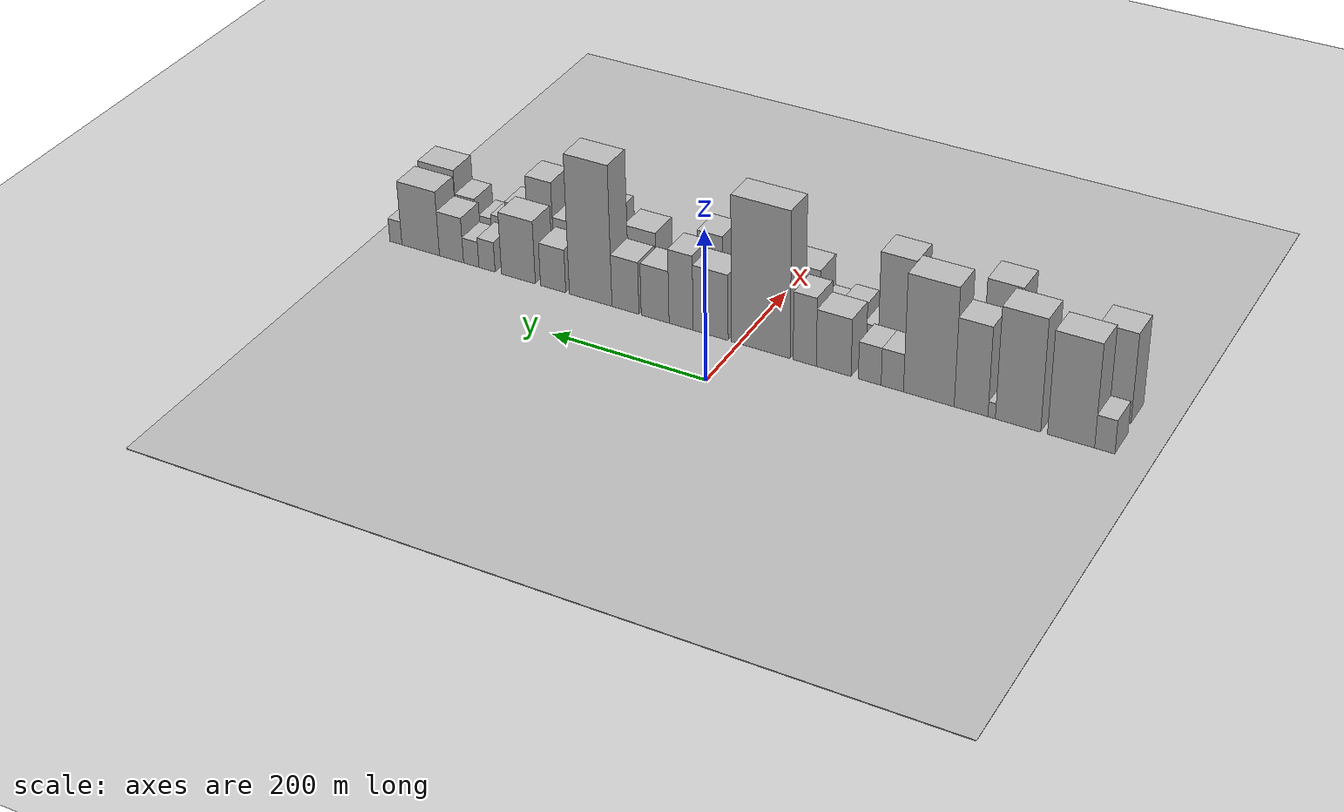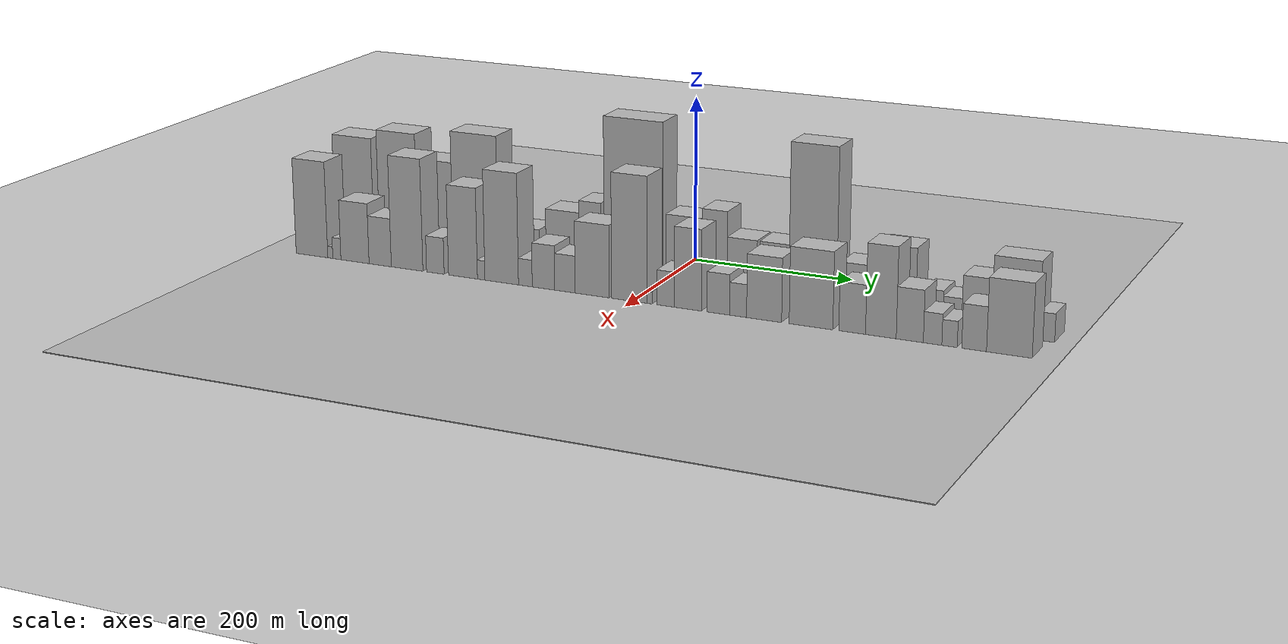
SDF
<sdf version="1.6">
 <world name="default">
  <include><name>ground_plane_1</name><uri>model://HANNAS_ground_plane</uri></include>
  <include>
   <name>ground_plane_2</name>
   <uri>model://HANNAS_ground_plane</uri>
   <pose>100 0 0  0 0 0</pose>
  </include>
  <model name="building_1">
   <static>1</static>
   <pose>100.0000 -445.3477 0 0.000000 0.000000 0.000000</pose>
   <link name="link">
    <pose>0 0 22.50 0 0 0</pose>
    <collision name="collision"><geometry><box><size>40.0000 23.3045 45.0000</size></box></geometry></collision>
    <visual name="visual">
     <cast_shadows>0</cast_shadows>
     <geometry><box><size>40.0000 23.3045 45.0000</size></box></geometry>
     <material>
      <script>
       <uri>model://HANNAS_wall/materials/scripts</uri>
       <uri>model://HANNAS_wall/materials/textures</uri>
       <name>vrc/HANNAS_wall</name>
      </script>
     </material>
    </visual>
   </link>
  </model>
  <model name="building_2">
   <static>1</static>
   <pose>100.0000 -406.2519 0 0.000000 0.000000 0.000000</pose>
   <link name="link">
    <pose>0 0 69.00 0 0 0</pose>
    <collision name="collision"><geometry><box><size>40.0000 54.8871 138.0000</size></box></geometry></collision>
    <visual name="visual">
     <cast_shadows>0</cast_shadows>
     <geometry><box><size>40.0000 54.8871 138.0000</size></box></geometry>
     <material>
      <script>
       <uri>model://HANNAS_wall/materials/scripts</uri>
       <uri>model://HANNAS_wall/materials/textures</uri>
       <name>vrc/HANNAS_wall</name>
      </script>
     </material>
    </visual>
   </link>
  </model>
  <model name="building_3">
   <static>1</static>
   <pose>100.0000 -344.0188 0 0.000000 0.000000 0.000000</pose>
   <link name="link">
    <pose>0 0 75.00 0 0 0</pose>
    <collision name="collision"><geometry><box><size>40.0000 53.5791 150.0000</size></box></geometry></collision>
    <visual name="visual">
     <cast_shadows>0</cast_shadows>
     <geometry><box><size>40.0000 53.5791 150.0000</size></box></geometry>
     <material>
      <script>
       <uri>model://HANNAS_wall/materials/scripts</uri>
       <uri>model://HANNAS_wall/materials/textures</uri>
       <name>vrc/HANNAS_wall</name>
      </script>
     </material>
    </visual>
   </link>
  </model>
  <model name="building_4">
   <static>1</static>
   <pose>100.0000 -312.8354 0 0.000000 0.000000 0.000000</pose>
   <link name="link">
    <pose>0 0 10.50 0 0 0</pose>
    <collision name="collision"><geometry><box><size>40.0000 8.7878 21.0000</size></box></geometry></collision>
    <visual name="visual">
     <cast_shadows>0</cast_shadows>
     <geometry><box><size>40.0000 8.7878 21.0000</size></box></geometry>
     <material>
      <script>
       <uri>model://HANNAS_wall/materials/scripts</uri>
       <uri>model://HANNAS_wall/materials/textures</uri>
       <name>vrc/HANNAS_wall</name>
      </script>
     </material>
    </visual>
   </link>
  </model>
  <model name="building_5">
   <static>1</static>
   <pose>100.0000 -288.1928 0 0.000000 0.000000 0.000000</pose>
   <link name="link">
    <pose>0 0 60.00 0 0 0</pose>
    <collision name="collision"><geometry><box><size>40.0000 40.4973 120.0000</size></box></geometry></collision>
    <visual name="visual">
     <cast_shadows>0</cast_shadows>
     <geometry><box><size>40.0000 40.4973 120.0000</size></box></geometry>
     <material>
      <script>
       <uri>model://HANNAS_wall/materials/scripts</uri>
       <uri>model://HANNAS_wall/materials/textures</uri>
       <name>vrc/HANNAS_wall</name>
      </script>
     </material>
    </visual>
   </link>
  </model>
  <model name="building_6">
   <static>1</static>
   <pose>100.0000 -237.1437 0 0.000000 0.000000 0.000000</pose>
   <link name="link">
    <pose>0 0 79.50 0 0 0</pose>
    <collision name="collision"><geometry><box><size>40.0000 61.6009 159.0000</size></box></geometry></collision>
    <visual name="visual">
     <cast_shadows>0</cast_shadows>
     <geometry><box><size>40.0000 61.6009 159.0000</size></box></geometry>
     <material>
      <script>
       <uri>model://HANNAS_wall/materials/scripts</uri>
       <uri>model://HANNAS_wall/materials/textures</uri>
       <name>vrc/HANNAS_wall</name>
      </script>
     </material>
    </visual>
   </link>
  </model>
  <model name="building_7">
   <static>1</static>
   <pose>100.0000 -192.6250 0 0.000000 0.000000 0.000000</pose>
   <link name="link">
    <pose>0 0 25.50 0 0 0</pose>
    <collision name="collision"><geometry><box><size>40.0000 27.4365 51.0000</size></box></geometry></collision>
    <visual name="visual">
     <cast_shadows>0</cast_shadows>
     <geometry><box><size>40.0000 27.4365 51.0000</size></box></geometry>
     <material>
      <script>
       <uri>model://HANNAS_wall/materials/scripts</uri>
       <uri>model://HANNAS_wall/materials/textures</uri>
       <name>vrc/HANNAS_wall</name>
      </script>
     </material>
    </visual>
   </link>
  </model>
  <model name="building_8">
   <static>1</static>
   <pose>100.0000 -164.7722 0 0.000000 0.000000 0.000000</pose>
   <link name="link">
    <pose>0 0 25.50 0 0 0</pose>
    <collision name="collision"><geometry><box><size>40.0000 28.2692 51.0000</size></box></geometry></collision>
    <visual name="visual">
     <cast_shadows>0</cast_shadows>
     <geometry><box><size>40.0000 28.2692 51.0000</size></box></geometry>
     <material>
      <script>
       <uri>model://HANNAS_wall/materials/scripts</uri>
       <uri>model://HANNAS_wall/materials/textures</uri>
       <name>vrc/HANNAS_wall</name>
      </script>
     </material>
    </visual>
   </link>
  </model>
  <model name="building_9">
   <static>1</static>
   <pose>100.0000 -119.8400 0 0.000000 0.000000 0.000000</pose>
   <link name="link">
    <pose>0 0 39.00 0 0 0</pose>
    <collision name="collision"><geometry><box><size>40.0000 43.5954 78.0000</size></box></geometry></collision>
    <visual name="visual">
     <cast_shadows>0</cast_shadows>
     <geometry><box><size>40.0000 43.5954 78.0000</size></box></geometry>
     <material>
      <script>
       <uri>model://HANNAS_wall/materials/scripts</uri>
       <uri>model://HANNAS_wall/materials/textures</uri>
       <name>vrc/HANNAS_wall</name>
      </script>
     </material>
    </visual>
   </link>
  </model>
  <model name="building_10">
   <static>1</static>
   <pose>100.0000 -83.4941 0 0.000000 0.000000 0.000000</pose>
   <link name="link">
    <pose>0 0 46.50 0 0 0</pose>
    <collision name="collision"><geometry><box><size>40.0000 29.0963 93.0000</size></box></geometry></collision>
    <visual name="visual">
     <cast_shadows>0</cast_shadows>
     <geometry><box><size>40.0000 29.0963 93.0000</size></box></geometry>
     <material>
      <script>
       <uri>model://HANNAS_wall/materials/scripts</uri>
       <uri>model://HANNAS_wall/materials/textures</uri>
       <name>vrc/HANNAS_wall</name>
      </script>
     </material>
    </visual>
   </link>
  </model>
  <model name="building_11">
   <static>1</static>
   <pose>100.0000 -27.3480 0 0.000000 0.000000 0.000000</pose>
   <link name="link">
    <pose>0 0 99.00 0 0 0</pose>
    <collision name="collision"><geometry><box><size>40.0000 75.1959 198.0000</size></box></geometry></collision>
    <visual name="visual">
     <cast_shadows>0</cast_shadows>
     <geometry><box><size>40.0000 75.1959 198.0000</size></box></geometry>
     <material>
      <script>
       <uri>model://HANNAS_wall/materials/scripts</uri>
       <uri>model://HANNAS_wall/materials/textures</uri>
       <name>vrc/HANNAS_wall</name>
      </script>
     </material>
    </visual>
   </link>
  </model>
  <model name="building_12">
   <static>1</static>
   <pose>100.0000 37.0428 0 0.000000 0.000000 0.000000</pose>
   <link name="link">
    <pose>0 0 45.00 0 0 0</pose>
    <collision name="collision"><geometry><box><size>40.0000 45.5857 90.0000</size></box></geometry></collision>
    <visual name="visual">
     <cast_shadows>0</cast_shadows>
     <geometry><box><size>40.0000 45.5857 90.0000</size></box></geometry>
     <material>
      <script>
       <uri>model://HANNAS_wall/materials/scripts</uri>
       <uri>model://HANNAS_wall/materials/textures</uri>
       <name>vrc/HANNAS_wall</name>
      </script>
     </material>
    </visual>
   </link>
  </model>
  <model name="building_13">
   <static>1</static>
   <pose>100.0000 75.6581 0 0.000000 0.000000 0.000000</pose>
   <link name="link">
    <pose>0 0 51.00 0 0 0</pose>
    <collision name="collision"><geometry><box><size>40.0000 31.6449 102.0000</size></box></geometry></collision>
    <visual name="visual">
     <cast_shadows>0</cast_shadows>
     <geometry><box><size>40.0000 31.6449 102.0000</size></box></geometry>
     <material>
      <script>
       <uri>model://HANNAS_wall/materials/scripts</uri>
       <uri>model://HANNAS_wall/materials/textures</uri>
       <name>vrc/HANNAS_wall</name>
      </script>
     </material>
    </visual>
   </link>
  </model>
  <model name="building_14">
   <static>1</static>
   <pose>100.0000 109.9101 0 0.000000 0.000000 0.000000</pose>
   <link name="link">
    <pose>0 0 36.00 0 0 0</pose>
    <collision name="collision"><geometry><box><size>40.0000 36.8592 72.0000</size></box></geometry></collision>
    <visual name="visual">
     <cast_shadows>0</cast_shadows>
     <geometry><box><size>40.0000 36.8592 72.0000</size></box></geometry>
     <material>
      <script>
       <uri>model://HANNAS_wall/materials/scripts</uri>
       <uri>model://HANNAS_wall/materials/textures</uri>
       <name>vrc/HANNAS_wall</name>
      </script>
     </material>
    </visual>
   </link>
  </model>
  <model name="building_15">
   <static>1</static>
   <pose>100.0000 149.3721 0 0.000000 0.000000 0.000000</pose>
   <link name="link">
    <pose>0 0 36.00 0 0 0</pose>
    <collision name="collision"><geometry><box><size>40.0000 36.0648 72.0000</size></box></geometry></collision>
    <visual name="visual">
     <cast_shadows>0</cast_shadows>
     <geometry><box><size>40.0000 36.0648 72.0000</size></box></geometry>
     <material>
      <script>
       <uri>model://HANNAS_wall/materials/scripts</uri>
       <uri>model://HANNAS_wall/materials/textures</uri>
       <name>vrc/HANNAS_wall</name>
      </script>
     </material>
    </visual>
   </link>
  </model>
  <model name="building_16">
   <static>1</static>
   <pose>100.0000 196.2061 0 0.000000 0.000000 0.000000</pose>
   <link name="link">
    <pose>0 0 96.00 0 0 0</pose>
    <collision name="collision"><geometry><box><size>40.0000 57.6031 192.0000</size></box></geometry></collision>
    <visual name="visual">
     <cast_shadows>0</cast_shadows>
     <geometry><box><size>40.0000 57.6031 192.0000</size></box></geometry>
     <material>
      <script>
       <uri>model://HANNAS_wall/materials/scripts</uri>
       <uri>model://HANNAS_wall/materials/textures</uri>
       <name>vrc/HANNAS_wall</name>
      </script>
     </material>
    </visual>
   </link>
  </model>
  <model name="building_17">
   <static>1</static>
   <pose>100.0000 247.3049 0 0.000000 0.000000 0.000000</pose>
   <link name="link">
    <pose>0 0 30.00 0 0 0</pose>
    <collision name="collision"><geometry><box><size>40.0000 34.5946 60.0000</size></box></geometry></collision>
    <visual name="visual">
     <cast_shadows>0</cast_shadows>
     <geometry><box><size>40.0000 34.5946 60.0000</size></box></geometry>
     <material>
      <script>
       <uri>model://HANNAS_wall/materials/scripts</uri>
       <uri>model://HANNAS_wall/materials/textures</uri>
       <name>vrc/HANNAS_wall</name>
      </script>
     </material>
    </visual>
   </link>
  </model>
  <model name="building_18">
   <static>1</static>
   <pose>100.0000 295.0249 0 0.000000 0.000000 0.000000</pose>
   <link name="link">
    <pose>0 0 43.50 0 0 0</pose>
    <collision name="collision"><geometry><box><size>40.0000 46.8454 87.0000</size></box></geometry></collision>
    <visual name="visual">
     <cast_shadows>0</cast_shadows>
     <geometry><box><size>40.0000 46.8454 87.0000</size></box></geometry>
     <material>
      <script>
       <uri>model://HANNAS_wall/materials/scripts</uri>
       <uri>model://HANNAS_wall/materials/textures</uri>
       <name>vrc/HANNAS_wall</name>
      </script>
     </material>
    </visual>
   </link>
  </model>
  <model name="building_19">
   <static>1</static>
   <pose>100.0000 338.7899 0 0.000000 0.000000 0.000000</pose>
   <link name="link">
    <pose>0 0 21.00 0 0 0</pose>
    <collision name="collision"><geometry><box><size>40.0000 22.6846 42.0000</size></box></geometry></collision>
    <visual name="visual">
     <cast_shadows>0</cast_shadows>
     <geometry><box><size>40.0000 22.6846 42.0000</size></box></geometry>
     <material>
      <script>
       <uri>model://HANNAS_wall/materials/scripts</uri>
       <uri>model://HANNAS_wall/materials/textures</uri>
       <name>vrc/HANNAS_wall</name>
      </script>
     </material>
    </visual>
   </link>
  </model>
  <model name="building_20">
   <static>1</static>
   <pose>100.0000 360.9182 0 0.000000 0.000000 0.000000</pose>
   <link name="link">
    <pose>0 0 18.00 0 0 0</pose>
    <collision name="collision"><geometry><box><size>40.0000 21.5720 36.0000</size></box></geometry></collision>
    <visual name="visual">
     <cast_shadows>0</cast_shadows>
     <geometry><box><size>40.0000 21.5720 36.0000</size></box></geometry>
     <material>
      <script>
       <uri>model://HANNAS_wall/materials/scripts</uri>
       <uri>model://HANNAS_wall/materials/textures</uri>
       <name>vrc/HANNAS_wall</name>
      </script>
     </material>
    </visual>
   </link>
  </model>
  <model name="building_21">
   <static>1</static>
   <pose>100.0000 388.7492 0 0.000000 0.000000 0.000000</pose>
   <link name="link">
    <pose>0 0 31.50 0 0 0</pose>
    <collision name="collision"><geometry><box><size>40.0000 34.0901 63.0000</size></box></geometry></collision>
    <visual name="visual">
     <cast_shadows>0</cast_shadows>
     <geometry><box><size>40.0000 34.0901 63.0000</size></box></geometry>
     <material>
      <script>
       <uri>model://HANNAS_wall/materials/scripts</uri>
       <uri>model://HANNAS_wall/materials/textures</uri>
       <name>vrc/HANNAS_wall</name>
      </script>
     </material>
    </visual>
   </link>
  </model>
  <model name="building_22">
   <static>1</static>
   <pose>100.0000 432.6390 0 0.000000 0.000000 0.000000</pose>
   <link name="link">
    <pose>0 0 45.00 0 0 0</pose>
    <collision name="collision"><geometry><box><size>40.0000 53.6894 90.0000</size></box></geometry></collision>
    <visual name="visual">
     <cast_shadows>0</cast_shadows>
     <geometry><box><size>40.0000 53.6894 90.0000</size></box></geometry>
     <material>
      <script>
       <uri>model://HANNAS_wall/materials/scripts</uri>
       <uri>model://HANNAS_wall/materials/textures</uri>
       <name>vrc/HANNAS_wall</name>
      </script>
     </material>
    </visual>
   </link>
  </model>
  <model name="building_23">
   <static>1</static>
   <pose>100.0000 468.1571 0 0.000000 0.000000 0.000000</pose>
   <link name="link">
    <pose>0 0 16.50 0 0 0</pose>
    <collision name="collision"><geometry><box><size>40.0000 17.3469 33.0000</size></box></geometry></collision>
    <visual name="visual">
     <cast_shadows>0</cast_shadows>
     <geometry><box><size>40.0000 17.3469 33.0000</size></box></geometry>
     <material>
      <script>
       <uri>model://HANNAS_wall/materials/scripts</uri>
       <uri>model://HANNAS_wall/materials/textures</uri>
       <name>vrc/HANNAS_wall</name>
      </script>
     </material>
    </visual>
   </link>
  </model>
  <model name="building_24">
   <static>1</static>
   <pose>160.0000 -430.4313 0 0.000000 0.000000 0.000000</pose>
   <link name="link">
    <pose>0 0 60.00 0 0 0</pose>
    <collision name="collision"><geometry><box><size>40.0000 45.1375 120.0000</size></box></geometry></collision>
    <visual name="visual">
     <cast_shadows>0</cast_shadows>
     <geometry><box><size>40.0000 45.1375 120.0000</size></box></geometry>
     <material>
      <script>
       <uri>model://HANNAS_wall/materials/scripts</uri>
       <uri>model://HANNAS_wall/materials/textures</uri>
       <name>vrc/HANNAS_wall</name>
      </script>
     </material>
    </visual>
   </link>
  </model>
  <model name="building_25">
   <static>1</static>
   <pose>160.0000 -404.3658 0 0.000000 0.000000 0.000000</pose>
   <link name="link">
    <pose>0 0 7.50 0 0 0</pose>
    <collision name="collision"><geometry><box><size>40.0000 6.9934 15.0000</size></box></geometry></collision>
    <visual name="visual">
     <cast_shadows>0</cast_shadows>
     <geometry><box><size>40.0000 6.9934 15.0000</size></box></geometry>
     <material>
      <script>
       <uri>model://HANNAS_wall/materials/scripts</uri>
       <uri>model://HANNAS_wall/materials/textures</uri>
       <name>vrc/HANNAS_wall</name>
      </script>
     </material>
    </visual>
   </link>
  </model>
  <model name="building_26">
   <static>1</static>
   <pose>160.0000 -395.1477 0 0.000000 0.000000 0.000000</pose>
   <link name="link">
    <pose>0 0 13.50 0 0 0</pose>
    <collision name="collision"><geometry><box><size>40.0000 11.4428 27.0000</size></box></geometry></collision>
    <visual name="visual">
     <cast_shadows>0</cast_shadows>
     <geometry><box><size>40.0000 11.4428 27.0000</size></box></geometry>
     <material>
      <script>
       <uri>model://HANNAS_wall/materials/scripts</uri>
       <uri>model://HANNAS_wall/materials/textures</uri>
       <name>vrc/HANNAS_wall</name>
      </script>
     </material>
    </visual>
   </link>
  </model>
  <model name="building_27">
   <static>1</static>
   <pose>160.0000 -369.6547 0 0.000000 0.000000 0.000000</pose>
   <link name="link">
    <pose>0 0 37.50 0 0 0</pose>
    <collision name="collision"><geometry><box><size>40.0000 39.5431 75.0000</size></box></geometry></collision>
    <visual name="visual">
     <cast_shadows>0</cast_shadows>
     <geometry><box><size>40.0000 39.5431 75.0000</size></box></geometry>
     <material>
      <script>
       <uri>model://HANNAS_wall/materials/scripts</uri>
       <uri>model://HANNAS_wall/materials/textures</uri>
       <name>vrc/HANNAS_wall</name>
      </script>
     </material>
    </visual>
   </link>
  </model>
  <model name="building_28">
   <static>1</static>
   <pose>160.0000 -334.4046 0 0.000000 0.000000 0.000000</pose>
   <link name="link">
    <pose>0 0 30.00 0 0 0</pose>
    <collision name="collision"><geometry><box><size>40.0000 30.9573 60.0000</size></box></geometry></collision>
    <visual name="visual">
     <cast_shadows>0</cast_shadows>
     <geometry><box><size>40.0000 30.9573 60.0000</size></box></geometry>
     <material>
      <script>
       <uri>model://HANNAS_wall/materials/scripts</uri>
       <uri>model://HANNAS_wall/materials/textures</uri>
       <name>vrc/HANNAS_wall</name>
      </script>
     </material>
    </visual>
   </link>
  </model>
  <model name="building_29">
   <static>1</static>
   <pose>160.0000 -297.1850 0 0.000000 0.000000 0.000000</pose>
   <link name="link">
    <pose>0 0 69.00 0 0 0</pose>
    <collision name="collision"><geometry><box><size>40.0000 43.4819 138.0000</size></box></geometry></collision>
    <visual name="visual">
     <cast_shadows>0</cast_shadows>
     <geometry><box><size>40.0000 43.4819 138.0000</size></box></geometry>
     <material>
      <script>
       <uri>model://HANNAS_wall/materials/scripts</uri>
       <uri>model://HANNAS_wall/materials/textures</uri>
       <name>vrc/HANNAS_wall</name>
      </script>
     </material>
    </visual>
   </link>
  </model>
  <model name="building_30">
   <static>1</static>
   <pose>160.0000 -258.4967 0 0.000000 0.000000 0.000000</pose>
   <link name="link">
    <pose>0 0 22.50 0 0 0</pose>
    <collision name="collision"><geometry><box><size>40.0000 23.8948 45.0000</size></box></geometry></collision>
    <visual name="visual">
     <cast_shadows>0</cast_shadows>
     <geometry><box><size>40.0000 23.8948 45.0000</size></box></geometry>
     <material>
      <script>
       <uri>model://HANNAS_wall/materials/scripts</uri>
       <uri>model://HANNAS_wall/materials/textures</uri>
       <name>vrc/HANNAS_wall</name>
      </script>
     </material>
    </visual>
   </link>
  </model>
  <model name="building_31">
   <static>1</static>
   <pose>160.0000 -221.1056 0 0.000000 0.000000 0.000000</pose>
   <link name="link">
    <pose>0 0 55.50 0 0 0</pose>
    <collision name="collision"><geometry><box><size>40.0000 38.8874 111.0000</size></box></geometry></collision>
    <visual name="visual">
     <cast_shadows>0</cast_shadows>
     <geometry><box><size>40.0000 38.8874 111.0000</size></box></geometry>
     <material>
      <script>
       <uri>model://HANNAS_wall/materials/scripts</uri>
       <uri>model://HANNAS_wall/materials/textures</uri>
       <name>vrc/HANNAS_wall</name>
      </script>
     </material>
    </visual>
   </link>
  </model>
  <model name="building_32">
   <static>1</static>
   <pose>160.0000 -196.6583 0 0.000000 0.000000 0.000000</pose>
   <link name="link">
    <pose>0 0 12.00 0 0 0</pose>
    <collision name="collision"><geometry><box><size>40.0000 10.0072 24.0000</size></box></geometry></collision>
    <visual name="visual">
     <cast_shadows>0</cast_shadows>
     <geometry><box><size>40.0000 10.0072 24.0000</size></box></geometry>
     <material>
      <script>
       <uri>model://HANNAS_wall/materials/scripts</uri>
       <uri>model://HANNAS_wall/materials/textures</uri>
       <name>vrc/HANNAS_wall</name>
      </script>
     </material>
    </visual>
   </link>
  </model>
  <model name="building_33">
   <static>1</static>
   <pose>160.0000 -169.4251 0 0.000000 0.000000 0.000000</pose>
   <link name="link">
    <pose>0 0 67.50 0 0 0</pose>
    <collision name="collision"><geometry><box><size>40.0000 44.4591 135.0000</size></box></geometry></collision>
    <visual name="visual">
     <cast_shadows>0</cast_shadows>
     <geometry><box><size>40.0000 44.4591 135.0000</size></box></geometry>
     <material>
      <script>
       <uri>model://HANNAS_wall/materials/scripts</uri>
       <uri>model://HANNAS_wall/materials/textures</uri>
       <name>vrc/HANNAS_wall</name>
      </script>
     </material>
    </visual>
   </link>
  </model>
  <model name="building_34">
   <static>1</static>
   <pose>160.0000 -138.1564 0 0.000000 0.000000 0.000000</pose>
   <link name="link">
    <pose>0 0 16.50 0 0 0</pose>
    <collision name="collision"><geometry><box><size>40.0000 18.0783 33.0000</size></box></geometry></collision>
    <visual name="visual">
     <cast_shadows>0</cast_shadows>
     <geometry><box><size>40.0000 18.0783 33.0000</size></box></geometry>
     <material>
      <script>
       <uri>model://HANNAS_wall/materials/scripts</uri>
       <uri>model://HANNAS_wall/materials/textures</uri>
       <name>vrc/HANNAS_wall</name>
      </script>
     </material>
    </visual>
   </link>
  </model>
  <model name="building_35">
   <static>1</static>
   <pose>160.0000 -114.4158 0 0.000000 0.000000 0.000000</pose>
   <link name="link">
    <pose>0 0 27.00 0 0 0</pose>
    <collision name="collision"><geometry><box><size>40.0000 29.4031 54.0000</size></box></geometry></collision>
    <visual name="visual">
     <cast_shadows>0</cast_shadows>
     <geometry><box><size>40.0000 29.4031 54.0000</size></box></geometry>
     <material>
      <script>
       <uri>model://HANNAS_wall/materials/scripts</uri>
       <uri>model://HANNAS_wall/materials/textures</uri>
       <name>vrc/HANNAS_wall</name>
      </script>
     </material>
    </visual>
   </link>
  </model>
  <model name="building_36">
   <static>1</static>
   <pose>160.0000 -86.5840 0 0.000000 0.000000 0.000000</pose>
   <link name="link">
    <pose>0 0 22.50 0 0 0</pose>
    <collision name="collision"><geometry><box><size>40.0000 26.2604 45.0000</size></box></geometry></collision>
    <visual name="visual">
     <cast_shadows>0</cast_shadows>
     <geometry><box><size>40.0000 26.2604 45.0000</size></box></geometry>
     <material>
      <script>
       <uri>model://HANNAS_wall/materials/scripts</uri>
       <uri>model://HANNAS_wall/materials/textures</uri>
       <name>vrc/HANNAS_wall</name>
      </script>
     </material>
    </visual>
   </link>
  </model>
  <model name="building_37">
   <static>1</static>
   <pose>160.0000 -51.5450 0 0.000000 0.000000 0.000000</pose>
   <link name="link">
    <pose>0 0 43.50 0 0 0</pose>
    <collision name="collision"><geometry><box><size>40.0000 43.8177 87.0000</size></box></geometry></collision>
    <visual name="visual">
     <cast_shadows>0</cast_shadows>
     <geometry><box><size>40.0000 43.8177 87.0000</size></box></geometry>
     <material>
      <script>
       <uri>model://HANNAS_wall/materials/scripts</uri>
       <uri>model://HANNAS_wall/materials/textures</uri>
       <name>vrc/HANNAS_wall</name>
      </script>
     </material>
    </visual>
   </link>
  </model>
  <model name="building_38">
   <static>1</static>
   <pose>160.0000 -4.0643 0 0.000000 0.000000 0.000000</pose>
   <link name="link">
    <pose>0 0 75.00 0 0 0</pose>
    <collision name="collision"><geometry><box><size>40.0000 45.1437 150.0000</size></box></geometry></collision>
    <visual name="visual">
     <cast_shadows>0</cast_shadows>
     <geometry><box><size>40.0000 45.1437 150.0000</size></box></geometry>
     <material>
      <script>
       <uri>model://HANNAS_wall/materials/scripts</uri>
       <uri>model://HANNAS_wall/materials/textures</uri>
       <name>vrc/HANNAS_wall</name>
      </script>
     </material>
    </visual>
   </link>
  </model>
  <model name="building_39">
   <static>1</static>
   <pose>160.0000 21.5250 0 0.000000 0.000000 0.000000</pose>
   <link name="link">
    <pose>0 0 7.50 0 0 0</pose>
    <collision name="collision"><geometry><box><size>40.0000 6.0349 15.0000</size></box></geometry></collision>
    <visual name="visual">
     <cast_shadows>0</cast_shadows>
     <geometry><box><size>40.0000 6.0349 15.0000</size></box></geometry>
     <material>
      <script>
       <uri>model://HANNAS_wall/materials/scripts</uri>
       <uri>model://HANNAS_wall/materials/textures</uri>
       <name>vrc/HANNAS_wall</name>
      </script>
     </material>
    </visual>
   </link>
  </model>
  <model name="building_40">
   <static>1</static>
   <pose>160.0000 41.3695 0 0.000000 0.000000 0.000000</pose>
   <link name="link">
    <pose>0 0 21.00 0 0 0</pose>
    <collision name="collision"><geometry><box><size>40.0000 21.6542 42.0000</size></box></geometry></collision>
    <visual name="visual">
     <cast_shadows>0</cast_shadows>
     <geometry><box><size>40.0000 21.6542 42.0000</size></box></geometry>
     <material>
      <script>
       <uri>model://HANNAS_wall/materials/scripts</uri>
       <uri>model://HANNAS_wall/materials/textures</uri>
       <name>vrc/HANNAS_wall</name>
      </script>
     </material>
    </visual>
   </link>
  </model>
  <model name="building_41">
   <static>1</static>
   <pose>160.0000 68.9111 0 0.000000 0.000000 0.000000</pose>
   <link name="link">
    <pose>0 0 48.00 0 0 0</pose>
    <collision name="collision"><geometry><box><size>40.0000 33.4290 96.0000</size></box></geometry></collision>
    <visual name="visual">
     <cast_shadows>0</cast_shadows>
     <geometry><box><size>40.0000 33.4290 96.0000</size></box></geometry>
     <material>
      <script>
       <uri>model://HANNAS_wall/materials/scripts</uri>
       <uri>model://HANNAS_wall/materials/textures</uri>
       <name>vrc/HANNAS_wall</name>
      </script>
     </material>
    </visual>
   </link>
  </model>
  <model name="building_42">
   <static>1</static>
   <pose>160.0000 106.3665 0 0.000000 0.000000 0.000000</pose>
   <link name="link">
    <pose>0 0 24.00 0 0 0</pose>
    <collision name="collision"><geometry><box><size>40.0000 27.4817 48.0000</size></box></geometry></collision>
    <visual name="visual">
     <cast_shadows>0</cast_shadows>
     <geometry><box><size>40.0000 27.4817 48.0000</size></box></geometry>
     <material>
      <script>
       <uri>model://HANNAS_wall/materials/scripts</uri>
       <uri>model://HANNAS_wall/materials/textures</uri>
       <name>vrc/HANNAS_wall</name>
      </script>
     </material>
    </visual>
   </link>
  </model>
  <model name="building_43">
   <static>1</static>
   <pose>160.0000 130.4435 0 0.000000 0.000000 0.000000</pose>
   <link name="link">
    <pose>0 0 19.50 0 0 0</pose>
    <collision name="collision"><geometry><box><size>40.0000 20.6723 39.0000</size></box></geometry></collision>
    <visual name="visual">
     <cast_shadows>0</cast_shadows>
     <geometry><box><size>40.0000 20.6723 39.0000</size></box></geometry>
     <material>
      <script>
       <uri>model://HANNAS_wall/materials/scripts</uri>
       <uri>model://HANNAS_wall/materials/textures</uri>
       <name>vrc/HANNAS_wall</name>
      </script>
     </material>
    </visual>
   </link>
  </model>
  <model name="building_44">
   <static>1</static>
   <pose>160.0000 161.8128 0 0.000000 0.000000 0.000000</pose>
   <link name="link">
    <pose>0 0 37.50 0 0 0</pose>
    <collision name="collision"><geometry><box><size>40.0000 42.0663 75.0000</size></box></geometry></collision>
    <visual name="visual">
     <cast_shadows>0</cast_shadows>
     <geometry><box><size>40.0000 42.0663 75.0000</size></box></geometry>
     <material>
      <script>
       <uri>model://HANNAS_wall/materials/scripts</uri>
       <uri>model://HANNAS_wall/materials/textures</uri>
       <name>vrc/HANNAS_wall</name>
      </script>
     </material>
    </visual>
   </link>
  </model>
  <model name="building_45">
   <static>1</static>
   <pose>160.0000 217.6329 0 0.000000 0.000000 0.000000</pose>
   <link name="link">
    <pose>0 0 45.00 0 0 0</pose>
    <collision name="collision"><geometry><box><size>40.0000 51.5740 90.0000</size></box></geometry></collision>
    <visual name="visual">
     <cast_shadows>0</cast_shadows>
     <geometry><box><size>40.0000 51.5740 90.0000</size></box></geometry>
     <material>
      <script>
       <uri>model://HANNAS_wall/materials/scripts</uri>
       <uri>model://HANNAS_wall/materials/textures</uri>
       <name>vrc/HANNAS_wall</name>
      </script>
     </material>
    </visual>
   </link>
  </model>
  <model name="building_46">
   <static>1</static>
   <pose>160.0000 265.9478 0 0.000000 0.000000 0.000000</pose>
   <link name="link">
    <pose>0 0 28.50 0 0 0</pose>
    <collision name="collision"><geometry><box><size>40.0000 31.0557 57.0000</size></box></geometry></collision>
    <visual name="visual">
     <cast_shadows>0</cast_shadows>
     <geometry><box><size>40.0000 31.0557 57.0000</size></box></geometry>
     <material>
      <script>
       <uri>model://HANNAS_wall/materials/scripts</uri>
       <uri>model://HANNAS_wall/materials/textures</uri>
       <name>vrc/HANNAS_wall</name>
      </script>
     </material>
    </visual>
   </link>
  </model>
  <model name="building_47">
   <static>1</static>
   <pose>160.0000 299.1803 0 0.000000 0.000000 0.000000</pose>
   <link name="link">
    <pose>0 0 52.50 0 0 0</pose>
    <collision name="collision"><geometry><box><size>40.0000 35.4093 105.0000</size></box></geometry></collision>
    <visual name="visual">
     <cast_shadows>0</cast_shadows>
     <geometry><box><size>40.0000 35.4093 105.0000</size></box></geometry>
     <material>
      <script>
       <uri>model://HANNAS_wall/materials/scripts</uri>
       <uri>model://HANNAS_wall/materials/textures</uri>
       <name>vrc/HANNAS_wall</name>
      </script>
     </material>
    </visual>
   </link>
  </model>
  <model name="building_48">
   <static>1</static>
   <pose>160.0000 332.3536 0 0.000000 0.000000 0.000000</pose>
   <link name="link">
    <pose>0 0 30.00 0 0 0</pose>
    <collision name="collision"><geometry><box><size>40.0000 30.9372 60.0000</size></box></geometry></collision>
    <visual name="visual">
     <cast_shadows>0</cast_shadows>
     <geometry><box><size>40.0000 30.9372 60.0000</size></box></geometry>
     <material>
      <script>
       <uri>model://HANNAS_wall/materials/scripts</uri>
       <uri>model://HANNAS_wall/materials/textures</uri>
       <name>vrc/HANNAS_wall</name>
      </script>
     </material>
    </visual>
   </link>
  </model>
  <model name="building_49">
   <static>1</static>
   <pose>160.0000 358.2752 0 0.000000 0.000000 0.000000</pose>
   <link name="link">
    <pose>0 0 18.00 0 0 0</pose>
    <collision name="collision"><geometry><box><size>40.0000 20.9061 36.0000</size></box></geometry></collision>
    <visual name="visual">
     <cast_shadows>0</cast_shadows>
     <geometry><box><size>40.0000 20.9061 36.0000</size></box></geometry>
     <material>
      <script>
       <uri>model://HANNAS_wall/materials/scripts</uri>
       <uri>model://HANNAS_wall/materials/textures</uri>
       <name>vrc/HANNAS_wall</name>
      </script>
     </material>
    </visual>
   </link>
  </model>
  <model name="building_50">
   <static>1</static>
   <pose>160.0000 377.3803 0 0.000000 0.000000 0.000000</pose>
   <link name="link">
    <pose>0 0 15.00 0 0 0</pose>
    <collision name="collision"><geometry><box><size>40.0000 17.3041 30.0000</size></box></geometry></collision>
    <visual name="visual">
     <cast_shadows>0</cast_shadows>
     <geometry><box><size>40.0000 17.3041 30.0000</size></box></geometry>
     <material>
      <script>
       <uri>model://HANNAS_wall/materials/scripts</uri>
       <uri>model://HANNAS_wall/materials/textures</uri>
       <name>vrc/HANNAS_wall</name>
      </script>
     </material>
    </visual>
   </link>
  </model>
  <model name="building_51">
   <static>1</static>
   <pose>160.0000 404.8759 0 0.000000 0.000000 0.000000</pose>
   <link name="link">
    <pose>0 0 25.50 0 0 0</pose>
    <collision name="collision"><geometry><box><size>40.0000 27.6871 51.0000</size></box></geometry></collision>
    <visual name="visual">
     <cast_shadows>0</cast_shadows>
     <geometry><box><size>40.0000 27.6871 51.0000</size></box></geometry>
     <material>
      <script>
       <uri>model://HANNAS_wall/materials/scripts</uri>
       <uri>model://HANNAS_wall/materials/textures</uri>
       <name>vrc/HANNAS_wall</name>
      </script>
     </material>
    </visual>
   </link>
  </model>
  <model name="building_52">
   <static>1</static>
   <pose>160.0000 443.8937 0 0.000000 0.000000 0.000000</pose>
   <link name="link">
    <pose>0 0 42.00 0 0 0</pose>
    <collision name="collision"><geometry><box><size>40.0000 50.3485 84.0000</size></box></geometry></collision>
    <visual name="visual">
     <cast_shadows>0</cast_shadows>
     <geometry><box><size>40.0000 50.3485 84.0000</size></box></geometry>
     <material>
      <script>
       <uri>model://HANNAS_wall/materials/scripts</uri>
       <uri>model://HANNAS_wall/materials/textures</uri>
       <name>vrc/HANNAS_wall</name>
      </script>
     </material>
    </visual>
   </link>
  </model>
 </world>
</sdf>
